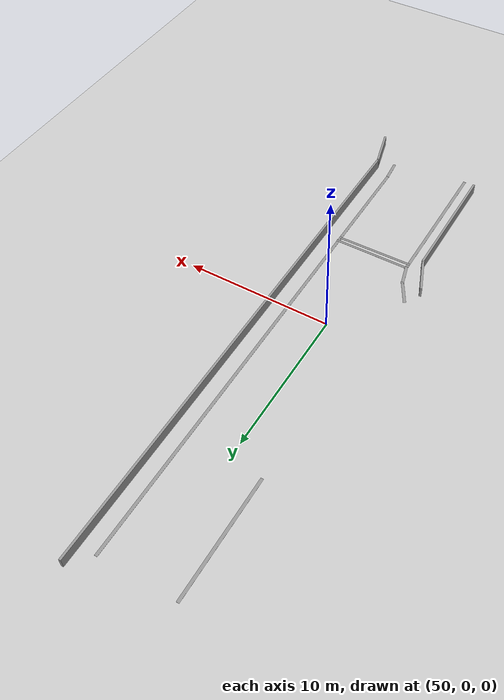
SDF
<sdf version="1.6">
 <world name="default">
  <model name="ground_plane">
   <static>1</static>
   <link name="link">
    <collision name="collision">
     <geometry><plane><normal>0 0 1</normal><size>100 100</size></plane></geometry>
     <surface>
      <contact><collide_bitmask>65535</collide_bitmask></contact>
      <friction><ode><mu>100</mu><mu2>50</mu2></ode></friction>
     </surface>
    </collision>
    <visual name="visual">
     <cast_shadows>0</cast_shadows>
     <geometry><plane><normal>0 0 1</normal><size>100 100</size></plane></geometry>
     <material>
      <script><uri>file://media/materials/scripts/gazebo.material</uri><name>Gazebo/Grey</name></script>
     </material>
    </visual>
   </link>
  </model>
  <model name="GercekDuvarSeritKoyu1">
   <link name="Wall_1032">
    <pose>-69.9829 -12.0716 0 0 -0 0</pose>
    <visual name="Wall_1032_Visual">
     <pose>0 0 0.005 0 -0 0</pose>
     <geometry><box><size>8 0.2 0.01</size></box></geometry>
     <material>
      <script><uri>file://media/materials/scripts/gazebo.material</uri><name>Gazebo/Grey</name></script>
      <ambient>1 1 1 1</ambient>
      <shader type="pixel"/>
     </material>
     <meta><layer>0</layer></meta>
    </visual>
    <collision name="Wall_1032_Collision">
     <pose>0 0 0.005 0 -0 0</pose>
     <geometry><box><size>8 0.2 0.01</size></box></geometry>
     <surface>
      <friction>
       <ode><mu>1</mu><mu2>1</mu2><fdir1>0 0 0</fdir1><slip1>0</slip1><slip2>0</slip2></ode>
       <torsional>
        <coefficient>1</coefficient>
        <patch_radius>0</patch_radius>
        <surface_radius>0</surface_radius>
        <use_patch_radius>1</use_patch_radius>
        <ode><slip>0</slip></ode>
       </torsional>
      </friction>
      <bounce><restitution_coefficient>0</restitution_coefficient><threshold>1e+06</threshold></bounce>
      <contact>
       <collide_without_contact>0</collide_without_contact>
       <collide_without_contact_bitmask>1</collide_without_contact_bitmask>
       <collide_bitmask>1</collide_bitmask>
       <ode>
        <soft_cfm>0</soft_cfm>
        <soft_erp>0.2</soft_erp>
        <kp>1e+13</kp>
        <kd>1</kd>
        <max_vel>0.01</max_vel>
        <min_depth>0</min_depth>
       </ode>
       <bullet>
        <split_impulse>1</split_impulse>
        <split_impulse_penetration_threshold>-0.01</split_impulse_penetration_threshold>
        <soft_cfm>0</soft_cfm>
        <soft_erp>0.2</soft_erp>
        <kp>1e+13</kp>
        <kd>1</kd>
       </bullet>
      </contact>
     </surface>
    </collision>
   </link>
   <link name="Wall_320">
    <pose>-39.8154 -6.97009 0 0 0 -3.04727</pose>
    <visual name="Wall_320_Visual">
     <pose>0 0 0.005 0 -0 0</pose>
     <geometry><box><size>1.63286 0.2 0.01</size></box></geometry>
     <material>
      <script><uri>file://media/materials/scripts/gazebo.material</uri><name>Gazebo/Grey</name></script>
      <ambient>1 1 1 1</ambient>
      <shader type="pixel"/>
     </material>
     <meta><layer>0</layer></meta>
    </visual>
    <collision name="Wall_320_Collision">
     <pose>0 0 0.005 0 -0 0</pose>
     <geometry><box><size>1.63286 0.2 0.01</size></box></geometry>
     <surface>
      <friction>
       <ode><mu>1</mu><mu2>1</mu2><fdir1>0 0 0</fdir1><slip1>0</slip1><slip2>0</slip2></ode>
       <torsional>
        <coefficient>1</coefficient>
        <patch_radius>0</patch_radius>
        <surface_radius>0</surface_radius>
        <use_patch_radius>1</use_patch_radius>
        <ode><slip>0</slip></ode>
       </torsional>
      </friction>
      <bounce><restitution_coefficient>0</restitution_coefficient><threshold>1e+06</threshold></bounce>
      <contact>
       <collide_without_contact>0</collide_without_contact>
       <collide_without_contact_bitmask>1</collide_without_contact_bitmask>
       <collide_bitmask>1</collide_bitmask>
       <ode>
        <soft_cfm>0</soft_cfm>
        <soft_erp>0.2</soft_erp>
        <kp>1e+13</kp>
        <kd>1</kd>
        <max_vel>0.01</max_vel>
        <min_depth>0</min_depth>
       </ode>
       <bullet>
        <split_impulse>1</split_impulse>
        <split_impulse_penetration_threshold>-0.01</split_impulse_penetration_threshold>
        <soft_cfm>0</soft_cfm>
        <soft_erp>0.2</soft_erp>
        <kp>1e+13</kp>
        <kd>1</kd>
       </bullet>
      </contact>
     </surface>
    </collision>
   </link>
   <link name="Wall_321">
    <pose>-44.0634 -7.03759 0 0 -0 3.14159</pose>
    <visual name="Wall_321_Visual">
     <pose>0 0 0.005 0 -0 0</pose>
     <geometry><box><size>7.269 0.2 0.01</size></box></geometry>
     <material>
      <script><uri>file://media/materials/scripts/gazebo.material</uri><name>Gazebo/Grey</name></script>
      <ambient>1 1 1 1</ambient>
      <shader type="pixel"/>
     </material>
     <meta><layer>0</layer></meta>
    </visual>
    <collision name="Wall_321_Collision">
     <pose>0 0 0.005 0 -0 0</pose>
     <geometry><box><size>7.269 0.2 0.01</size></box></geometry>
     <surface>
      <friction>
       <ode><mu>1</mu><mu2>1</mu2><fdir1>0 0 0</fdir1><slip1>0</slip1><slip2>0</slip2></ode>
       <torsional>
        <coefficient>1</coefficient>
        <patch_radius>0</patch_radius>
        <surface_radius>0</surface_radius>
        <use_patch_radius>1</use_patch_radius>
        <ode><slip>0</slip></ode>
       </torsional>
      </friction>
      <bounce><restitution_coefficient>0</restitution_coefficient><threshold>1e+06</threshold></bounce>
      <contact>
       <collide_without_contact>0</collide_without_contact>
       <collide_without_contact_bitmask>1</collide_without_contact_bitmask>
       <collide_bitmask>1</collide_bitmask>
       <ode>
        <soft_cfm>0</soft_cfm>
        <soft_erp>0.2</soft_erp>
        <kp>1e+13</kp>
        <kd>1</kd>
        <max_vel>0.01</max_vel>
        <min_depth>0</min_depth>
       </ode>
       <bullet>
        <split_impulse>1</split_impulse>
        <split_impulse_penetration_threshold>-0.01</split_impulse_penetration_threshold>
        <soft_cfm>0</soft_cfm>
        <soft_erp>0.2</soft_erp>
        <kp>1e+13</kp>
        <kd>1</kd>
       </bullet>
      </contact>
     </surface>
    </collision>
   </link>
   <link name="Wall_323">
    <pose>-60.7729 -7.03759 0 0 -0 3.14159</pose>
    <visual name="Wall_323_Visual">
     <pose>0 0 0.005 0 -0 0</pose>
     <geometry><box><size>26.5499 0.2 0.01</size></box></geometry>
     <material>
      <script><uri>file://media/materials/scripts/gazebo.material</uri><name>Gazebo/Grey</name></script>
      <ambient>1 1 1 1</ambient>
      <shader type="pixel"/>
     </material>
     <meta><layer>0</layer></meta>
    </visual>
    <collision name="Wall_323_Collision">
     <pose>0 0 0.005 0 -0 0</pose>
     <geometry><box><size>26.5499 0.2 0.01</size></box></geometry>
     <surface>
      <friction>
       <ode><mu>1</mu><mu2>1</mu2><fdir1>0 0 0</fdir1><slip1>0</slip1><slip2>0</slip2></ode>
       <torsional>
        <coefficient>1</coefficient>
        <patch_radius>0</patch_radius>
        <surface_radius>0</surface_radius>
        <use_patch_radius>1</use_patch_radius>
        <ode><slip>0</slip></ode>
       </torsional>
      </friction>
      <bounce><restitution_coefficient>0</restitution_coefficient><threshold>1e+06</threshold></bounce>
      <contact>
       <collide_without_contact>0</collide_without_contact>
       <collide_without_contact_bitmask>1</collide_without_contact_bitmask>
       <collide_bitmask>1</collide_bitmask>
       <ode>
        <soft_cfm>0</soft_cfm>
        <soft_erp>0.2</soft_erp>
        <kp>1e+13</kp>
        <kd>1</kd>
        <max_vel>0.01</max_vel>
        <min_depth>0</min_depth>
       </ode>
       <bullet>
        <split_impulse>1</split_impulse>
        <split_impulse_penetration_threshold>-0.01</split_impulse_penetration_threshold>
        <soft_cfm>0</soft_cfm>
        <soft_erp>0.2</soft_erp>
        <kp>1e+13</kp>
        <kd>1</kd>
       </bullet>
      </contact>
     </surface>
    </collision>
   </link>
   <link name="Wall_357">
    <pose>-43.1159 -12.0836 0 0 -0 3.14159</pose>
    <visual name="Wall_357_Visual">
     <pose>0 0 0.005 0 -0 0</pose>
     <geometry><box><size>9.8 0.2 0.01</size></box></geometry>
     <material>
      <script><uri>file://media/materials/scripts/gazebo.material</uri><name>Gazebo/Grey</name></script>
      <ambient>1 1 1 1</ambient>
      <shader type="pixel"/>
     </material>
     <meta><layer>0</layer></meta>
    </visual>
    <collision name="Wall_357_Collision">
     <pose>0 0 0.005 0 -0 0</pose>
     <geometry><box><size>9.8 0.2 0.01</size></box></geometry>
     <surface>
      <friction>
       <ode><mu>1</mu><mu2>1</mu2><fdir1>0 0 0</fdir1><slip1>0</slip1><slip2>0</slip2></ode>
       <torsional>
        <coefficient>1</coefficient>
        <patch_radius>0</patch_radius>
        <surface_radius>0</surface_radius>
        <use_patch_radius>1</use_patch_radius>
        <ode><slip>0</slip></ode>
       </torsional>
      </friction>
      <bounce><restitution_coefficient>0</restitution_coefficient><threshold>1e+06</threshold></bounce>
      <contact>
       <collide_without_contact>0</collide_without_contact>
       <collide_without_contact_bitmask>1</collide_without_contact_bitmask>
       <collide_bitmask>1</collide_bitmask>
       <ode>
        <soft_cfm>0</soft_cfm>
        <soft_erp>0.2</soft_erp>
        <kp>1e+13</kp>
        <kd>1</kd>
        <max_vel>0.01</max_vel>
        <min_depth>0</min_depth>
       </ode>
       <bullet>
        <split_impulse>1</split_impulse>
        <split_impulse_penetration_threshold>-0.01</split_impulse_penetration_threshold>
        <soft_cfm>0</soft_cfm>
        <soft_erp>0.2</soft_erp>
        <kp>1e+13</kp>
        <kd>1</kd>
       </bullet>
      </contact>
     </surface>
    </collision>
   </link>
   <link name="Wall_358">
    <pose>-48.5679 -12.2581 0 0 0 -2.88008</pose>
    <visual name="Wall_358_Visual">
     <pose>0 0 0.005 0 -0 0</pose>
     <geometry><box><size>1.54992 0.2 0.01</size></box></geometry>
     <material>
      <script><uri>file://media/materials/scripts/gazebo.material</uri><name>Gazebo/Grey</name></script>
      <ambient>1 1 1 1</ambient>
      <shader type="pixel"/>
     </material>
     <meta><layer>0</layer></meta>
    </visual>
    <collision name="Wall_358_Collision">
     <pose>0 0 0.005 0 -0 0</pose>
     <geometry><box><size>1.54992 0.2 0.01</size></box></geometry>
     <surface>
      <friction>
       <ode><mu>1</mu><mu2>1</mu2><fdir1>0 0 0</fdir1><slip1>0</slip1><slip2>0</slip2></ode>
       <torsional>
        <coefficient>1</coefficient>
        <patch_radius>0</patch_radius>
        <surface_radius>0</surface_radius>
        <use_patch_radius>1</use_patch_radius>
        <ode><slip>0</slip></ode>
       </torsional>
      </friction>
      <bounce><restitution_coefficient>0</restitution_coefficient><threshold>1e+06</threshold></bounce>
      <contact>
       <collide_without_contact>0</collide_without_contact>
       <collide_without_contact_bitmask>1</collide_without_contact_bitmask>
       <collide_bitmask>1</collide_bitmask>
       <ode>
        <soft_cfm>0</soft_cfm>
        <soft_erp>0.2</soft_erp>
        <kp>1e+13</kp>
        <kd>1</kd>
        <max_vel>0.01</max_vel>
        <min_depth>0</min_depth>
       </ode>
       <bullet>
        <split_impulse>1</split_impulse>
        <split_impulse_penetration_threshold>-0.01</split_impulse_penetration_threshold>
        <soft_cfm>0</soft_cfm>
        <soft_erp>0.2</soft_erp>
        <kp>1e+13</kp>
        <kd>1</kd>
       </bullet>
      </contact>
     </surface>
    </collision>
   </link>
   <link name="Wall_359">
    <pose>-49.9129 -12.8326 0 0 0 -2.61811</pose>
    <visual name="Wall_359_Visual">
     <pose>0 0 0.005 0 -0 0</pose>
     <geometry><box><size>1.80001 0.2 0.01</size></box></geometry>
     <material>
      <script><uri>file://media/materials/scripts/gazebo.material</uri><name>Gazebo/Grey</name></script>
      <ambient>1 1 1 1</ambient>
      <shader type="pixel"/>
     </material>
     <meta><layer>0</layer></meta>
    </visual>
    <collision name="Wall_359_Collision">
     <pose>0 0 0.005 0 -0 0</pose>
     <geometry><box><size>1.80001 0.2 0.01</size></box></geometry>
     <surface>
      <friction>
       <ode><mu>1</mu><mu2>1</mu2><fdir1>0 0 0</fdir1><slip1>0</slip1><slip2>0</slip2></ode>
       <torsional>
        <coefficient>1</coefficient>
        <patch_radius>0</patch_radius>
        <surface_radius>0</surface_radius>
        <use_patch_radius>1</use_patch_radius>
        <ode><slip>0</slip></ode>
       </torsional>
      </friction>
      <bounce><restitution_coefficient>0</restitution_coefficient><threshold>1e+06</threshold></bounce>
      <contact>
       <collide_without_contact>0</collide_without_contact>
       <collide_without_contact_bitmask>1</collide_without_contact_bitmask>
       <collide_bitmask>1</collide_bitmask>
       <ode>
        <soft_cfm>0</soft_cfm>
        <soft_erp>0.2</soft_erp>
        <kp>1e+13</kp>
        <kd>1</kd>
        <max_vel>0.01</max_vel>
        <min_depth>0</min_depth>
       </ode>
       <bullet>
        <split_impulse>1</split_impulse>
        <split_impulse_penetration_threshold>-0.01</split_impulse_penetration_threshold>
        <soft_cfm>0</soft_cfm>
        <soft_erp>0.2</soft_erp>
        <kp>1e+13</kp>
        <kd>1</kd>
       </bullet>
      </contact>
     </surface>
    </collision>
   </link>
   <link name="Wall_57">
    <pose>-38.6459 -5.59109 0 0 0 -2.87983</pose>
    <inertial>
     <mass>1</mass>
     <inertia><ixx>1</ixx><ixy>0</ixy><ixz>0</ixz><iyy>1</iyy><iyz>0</iyz><izz>1</izz></inertia>
    </inertial>
    <visual name="Wall_57_Visual">
     <pose>0 0 0.375 0 -0 0</pose>
     <geometry><box><size>2.75 0.15 0.75</size></box></geometry>
     <material>
      <script><uri>file://media/materials/scripts/gazebo.material</uri><name>Gazebo/Grey</name></script>
      <ambient>0.5 0.5 0.5 1</ambient>
      <shader type="pixel"><normal_map>__default__</normal_map></shader>
      <diffuse>0.7 0.7 0.7 1</diffuse>
      <specular>0.01 0.01 0.01 1</specular>
      <emissive>0 0 0 1</emissive>
     </material>
     <meta><layer>0</layer></meta>
    </visual>
    <collision name="Wall_57_Collision">
     <pose>0 0 0.375 0 -0 0</pose>
     <geometry><box><size>2.75 0.15 0.75</size></box></geometry>
     <surface>
      <friction>
       <ode><mu>1</mu><mu2>1</mu2><fdir1>0 0 0</fdir1><slip1>0</slip1><slip2>0</slip2></ode>
       <torsional>
        <coefficient>1</coefficient>
        <patch_radius>0</patch_radius>
        <surface_radius>0</surface_radius>
        <use_patch_radius>1</use_patch_radius>
        <ode><slip>0</slip></ode>
       </torsional>
      </friction>
      <bounce><restitution_coefficient>0</restitution_coefficient><threshold>1e+06</threshold></bounce>
      <contact>
       <collide_without_contact>0</collide_without_contact>
       <collide_without_contact_bitmask>1</collide_without_contact_bitmask>
       <collide_bitmask>1</collide_bitmask>
       <ode>
        <soft_cfm>0</soft_cfm>
        <soft_erp>0.2</soft_erp>
        <kp>1e+13</kp>
        <kd>1</kd>
        <max_vel>0.01</max_vel>
        <min_depth>0</min_depth>
       </ode>
       <bullet>
        <split_impulse>1</split_impulse>
        <split_impulse_penetration_threshold>-0.01</split_impulse_penetration_threshold>
        <soft_cfm>0</soft_cfm>
        <soft_erp>0.2</soft_erp>
        <kp>1e+13</kp>
        <kd>1</kd>
       </bullet>
      </contact>
     </surface>
    </collision>
   </link>
   <link name="Wall_59">
    <pose>-57.5769 -5.92759 0 0 -0 3.14159</pose>
    <inertial>
     <mass>1</mass>
     <inertia><ixx>1</ixx><ixy>0</ixy><ixz>0</ixz><iyy>1</iyy><iyz>0</iyz><izz>1</izz></inertia>
    </inertial>
    <visual name="Wall_59_Visual">
     <pose>0 0 0.375 0 -0 0</pose>
     <geometry><box><size>35.5 0.15 0.75</size></box></geometry>
     <material>
      <script><uri>file://media/materials/scripts/gazebo.material</uri><name>Gazebo/Grey</name></script>
      <ambient>0.5 0.5 0.5 1</ambient>
      <shader type="pixel"><normal_map>__default__</normal_map></shader>
      <diffuse>0.7 0.7 0.7 1</diffuse>
      <specular>0.01 0.01 0.01 1</specular>
      <emissive>0 0 0 1</emissive>
     </material>
     <meta><layer>0</layer></meta>
    </visual>
    <collision name="Wall_59_Collision">
     <pose>0 0 0.375 0 -0 0</pose>
     <geometry><box><size>35.5 0.15 0.75</size></box></geometry>
     <surface>
      <friction>
       <ode><mu>1</mu><mu2>1</mu2><fdir1>0 0 0</fdir1><slip1>0</slip1><slip2>0</slip2></ode>
       <torsional>
        <coefficient>1</coefficient>
        <patch_radius>0</patch_radius>
        <surface_radius>0</surface_radius>
        <use_patch_radius>1</use_patch_radius>
        <ode><slip>0</slip></ode>
       </torsional>
      </friction>
      <bounce><restitution_coefficient>0</restitution_coefficient><threshold>1e+06</threshold></bounce>
      <contact>
       <collide_without_contact>0</collide_without_contact>
       <collide_without_contact_bitmask>1</collide_without_contact_bitmask>
       <collide_bitmask>1</collide_bitmask>
       <ode>
        <soft_cfm>0</soft_cfm>
        <soft_erp>0.2</soft_erp>
        <kp>1e+13</kp>
        <kd>1</kd>
        <max_vel>0.01</max_vel>
        <min_depth>0</min_depth>
       </ode>
       <bullet>
        <split_impulse>1</split_impulse>
        <split_impulse_penetration_threshold>-0.01</split_impulse_penetration_threshold>
        <soft_cfm>0</soft_cfm>
        <soft_erp>0.2</soft_erp>
        <kp>1e+13</kp>
        <kd>1</kd>
       </bullet>
      </contact>
     </surface>
    </collision>
   </link>
   <link name="Wall_602">
    <pose>-47.9159 -9.53359 0 0 -0 1.5708</pose>
    <visual name="Wall_602_Visual">
     <pose>0 0 0.005 0 -0 0</pose>
     <geometry><box><size>5.25 0.15 0.01</size></box></geometry>
     <material>
      <script><uri>file://media/materials/scripts/gazebo.material</uri><name>Gazebo/Grey</name></script>
      <ambient>1 1 1 1</ambient>
      <shader type="pixel"/>
     </material>
     <meta><layer>0</layer></meta>
    </visual>
    <collision name="Wall_602_Collision">
     <pose>0 0 0.005 0 -0 0</pose>
     <geometry><box><size>5.25 0.15 0.01</size></box></geometry>
     <surface>
      <friction>
       <ode><mu>1</mu><mu2>1</mu2><fdir1>0 0 0</fdir1><slip1>0</slip1><slip2>0</slip2></ode>
       <torsional>
        <coefficient>1</coefficient>
        <patch_radius>0</patch_radius>
        <surface_radius>0</surface_radius>
        <use_patch_radius>1</use_patch_radius>
        <ode><slip>0</slip></ode>
       </torsional>
      </friction>
      <bounce><restitution_coefficient>0</restitution_coefficient><threshold>1e+06</threshold></bounce>
      <contact>
       <collide_without_contact>0</collide_without_contact>
       <collide_without_contact_bitmask>1</collide_without_contact_bitmask>
       <collide_bitmask>1</collide_bitmask>
       <ode>
        <soft_cfm>0</soft_cfm>
        <soft_erp>0.2</soft_erp>
        <kp>1e+13</kp>
        <kd>1</kd>
        <max_vel>0.01</max_vel>
        <min_depth>0</min_depth>
       </ode>
       <bullet>
        <split_impulse>1</split_impulse>
        <split_impulse_penetration_threshold>-0.01</split_impulse_penetration_threshold>
        <soft_cfm>0</soft_cfm>
        <soft_erp>0.2</soft_erp>
        <kp>1e+13</kp>
        <kd>1</kd>
       </bullet>
      </contact>
     </surface>
    </collision>
   </link>
   <link name="Wall_605">
    <pose>-47.5734 -9.54709 0 0 -0 1.58056</pose>
    <visual name="Wall_605_Visual">
     <pose>0 0 0.005 0 -0 0</pose>
     <geometry><box><size>5.16984 0.15 0.01</size></box></geometry>
     <material>
      <script><uri>file://media/materials/scripts/gazebo.material</uri><name>Gazebo/Grey</name></script>
      <ambient>1 1 1 1</ambient>
      <shader type="pixel"/>
     </material>
     <meta><layer>0</layer></meta>
    </visual>
    <collision name="Wall_605_Collision">
     <pose>0 0 0.005 0 -0 0</pose>
     <geometry><box><size>5.16984 0.15 0.01</size></box></geometry>
     <surface>
      <friction>
       <ode><mu>1</mu><mu2>1</mu2><fdir1>0 0 0</fdir1><slip1>0</slip1><slip2>0</slip2></ode>
       <torsional>
        <coefficient>1</coefficient>
        <patch_radius>0</patch_radius>
        <surface_radius>0</surface_radius>
        <use_patch_radius>1</use_patch_radius>
        <ode><slip>0</slip></ode>
       </torsional>
      </friction>
      <bounce><restitution_coefficient>0</restitution_coefficient><threshold>1e+06</threshold></bounce>
      <contact>
       <collide_without_contact>0</collide_without_contact>
       <collide_without_contact_bitmask>1</collide_without_contact_bitmask>
       <collide_bitmask>1</collide_bitmask>
       <ode>
        <soft_cfm>0</soft_cfm>
        <soft_erp>0.2</soft_erp>
        <kp>1e+13</kp>
        <kd>1</kd>
        <max_vel>0.01</max_vel>
        <min_depth>0</min_depth>
       </ode>
       <bullet>
        <split_impulse>1</split_impulse>
        <split_impulse_penetration_threshold>-0.01</split_impulse_penetration_threshold>
        <soft_cfm>0</soft_cfm>
        <soft_erp>0.2</soft_erp>
        <kp>1e+13</kp>
        <kd>1</kd>
       </bullet>
      </contact>
     </surface>
    </collision>
   </link>
   <link name="Wall_68">
    <pose>-48.5379 -13.4386 0 0 -0 0.373893</pose>
    <inertial>
     <mass>1</mass>
     <inertia><ixx>1</ixx><ixy>0</ixy><ixz>0</ixz><iyy>1</iyy><iyz>0</iyz><izz>1</izz></inertia>
    </inertial>
    <visual name="Wall_68_Visual">
     <pose>0 0 0.375 0 -0 0</pose>
     <geometry><box><size>2.56494 0.15 0.75</size></box></geometry>
     <material>
      <script><uri>file://media/materials/scripts/gazebo.material</uri><name>Gazebo/Grey</name></script>
      <ambient>0.5 0.5 0.5 1</ambient>
      <shader type="pixel"><normal_map>__default__</normal_map></shader>
      <diffuse>0.7 0.7 0.7 1</diffuse>
      <specular>0.01 0.01 0.01 1</specular>
      <emissive>0 0 0 1</emissive>
     </material>
     <meta><layer>0</layer></meta>
    </visual>
    <collision name="Wall_68_Collision">
     <pose>0 0 0.375 0 -0 0</pose>
     <geometry><box><size>2.56494 0.15 0.75</size></box></geometry>
     <surface>
      <friction>
       <ode><mu>1</mu><mu2>1</mu2><fdir1>0 0 0</fdir1><slip1>0</slip1><slip2>0</slip2></ode>
       <torsional>
        <coefficient>1</coefficient>
        <patch_radius>0</patch_radius>
        <surface_radius>0</surface_radius>
        <use_patch_radius>1</use_patch_radius>
        <ode><slip>0</slip></ode>
       </torsional>
      </friction>
      <bounce><restitution_coefficient>0</restitution_coefficient><threshold>1e+06</threshold></bounce>
      <contact>
       <collide_without_contact>0</collide_without_contact>
       <collide_without_contact_bitmask>1</collide_without_contact_bitmask>
       <collide_bitmask>1</collide_bitmask>
       <ode>
        <soft_cfm>0</soft_cfm>
        <soft_erp>0.2</soft_erp>
        <kp>1e+13</kp>
        <kd>1</kd>
        <max_vel>0.01</max_vel>
        <min_depth>0</min_depth>
       </ode>
       <bullet>
        <split_impulse>1</split_impulse>
        <split_impulse_penetration_threshold>-0.01</split_impulse_penetration_threshold>
        <soft_cfm>0</soft_cfm>
        <soft_erp>0.2</soft_erp>
        <kp>1e+13</kp>
        <kd>1</kd>
       </bullet>
      </contact>
     </surface>
    </collision>
   </link>
   <link name="Wall_69">
    <pose>-43.2389 -12.9976 0 0 -0 0</pose>
    <inertial>
     <mass>1</mass>
     <inertia><ixx>1</ixx><ixy>0</ixy><ixz>0</ixz><iyy>1</iyy><iyz>0</iyz><izz>1</izz></inertia>
    </inertial>
    <visual name="Wall_69_Visual">
     <pose>0 0 0.375 0 -0 0</pose>
     <geometry><box><size>8.5 0.15 0.75</size></box></geometry>
     <material>
      <script><uri>file://media/materials/scripts/gazebo.material</uri><name>Gazebo/Grey</name></script>
      <ambient>0.5 0.5 0.5 1</ambient>
      <shader type="pixel"><normal_map>__default__</normal_map></shader>
      <diffuse>0.7 0.7 0.7 1</diffuse>
      <specular>0.01 0.01 0.01 1</specular>
      <emissive>0 0 0 1</emissive>
     </material>
     <meta><layer>0</layer></meta>
    </visual>
    <collision name="Wall_69_Collision">
     <pose>0 0 0.375 0 -0 0</pose>
     <geometry><box><size>8.5 0.15 0.75</size></box></geometry>
     <surface>
      <friction>
       <ode><mu>1</mu><mu2>1</mu2><fdir1>0 0 0</fdir1><slip1>0</slip1><slip2>0</slip2></ode>
       <torsional>
        <coefficient>1</coefficient>
        <patch_radius>0</patch_radius>
        <surface_radius>0</surface_radius>
        <use_patch_radius>1</use_patch_radius>
        <ode><slip>0</slip></ode>
       </torsional>
      </friction>
      <bounce><restitution_coefficient>0</restitution_coefficient><threshold>1e+06</threshold></bounce>
      <contact>
       <collide_without_contact>0</collide_without_contact>
       <collide_without_contact_bitmask>1</collide_without_contact_bitmask>
       <collide_bitmask>1</collide_bitmask>
       <ode>
        <soft_cfm>0</soft_cfm>
        <soft_erp>0.2</soft_erp>
        <kp>1e+13</kp>
        <kd>1</kd>
        <max_vel>0.01</max_vel>
        <min_depth>0</min_depth>
       </ode>
       <bullet>
        <split_impulse>1</split_impulse>
        <split_impulse_penetration_threshold>-0.01</split_impulse_penetration_threshold>
        <soft_cfm>0</soft_cfm>
        <soft_erp>0.2</soft_erp>
        <kp>1e+13</kp>
        <kd>1</kd>
       </bullet>
      </contact>
     </surface>
    </collision>
   </link>
   <static>1</static>
   <pose>59.9324 -54.7034 -0 0 0 -1.5695</pose>
  </model>
 </world>
</sdf>
